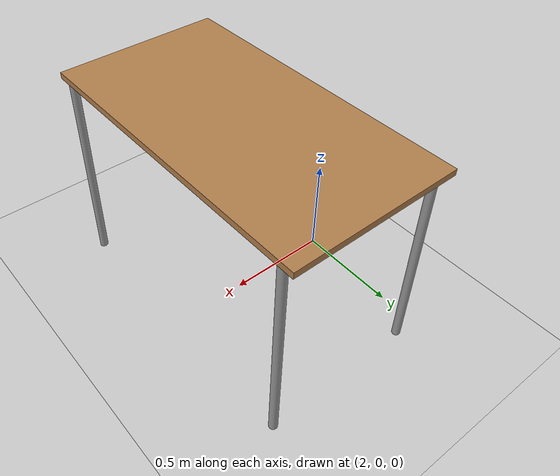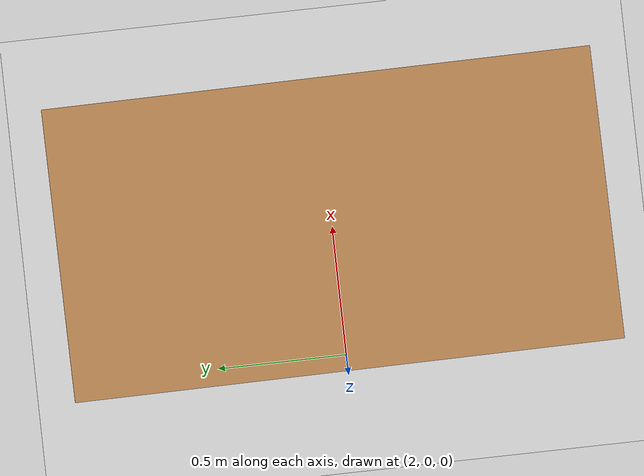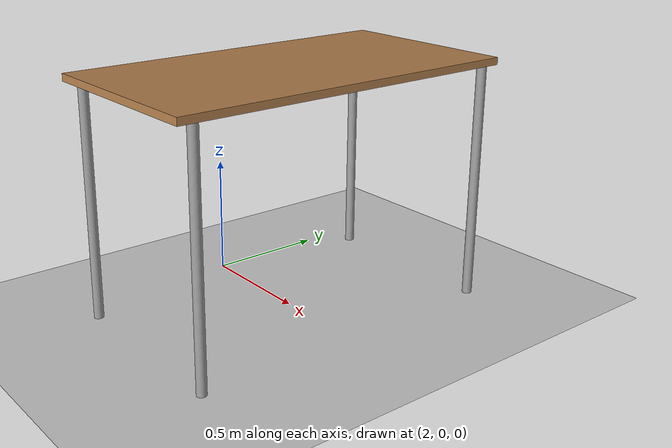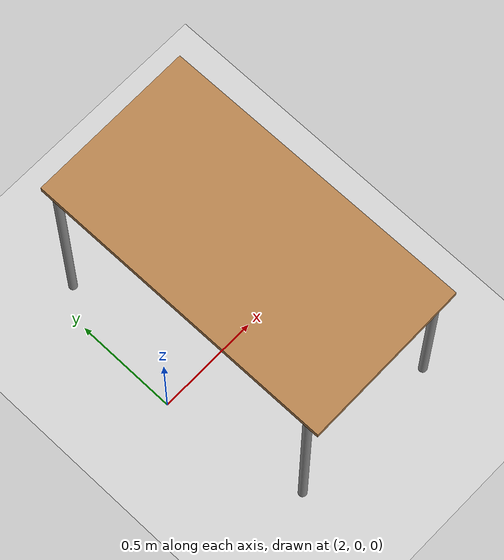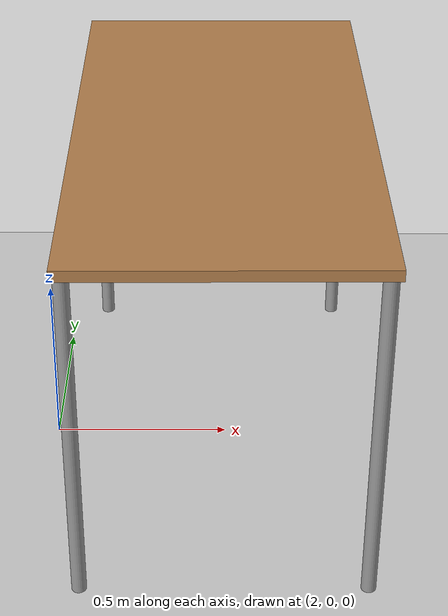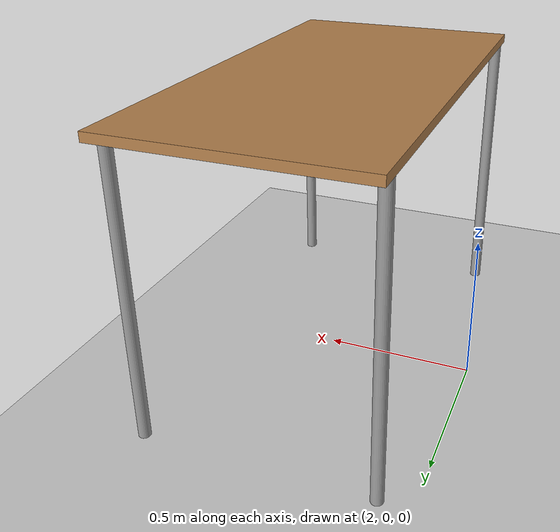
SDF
<sdf version="1.5">
 <world name="default">
  <plugin filename="libVRCPlugin.so" name="vrc_plugin">
   <atlas><model_name>atlas</model_name><pin_link>utorso</pin_link></atlas>
   <drc_vehicle><model_name>golf_cart</model_name><seat_link>chassis</seat_link></drc_vehicle>
   <drc_fire_hose>
    <fire_hose_model>fire_hose</fire_hose_model>
    <coupling_link>coupling</coupling_link>
    <standpipe_model>standpipe</standpipe_model>
    <spout_link>standpipe</spout_link>
    <thread_pitch>-1000</thread_pitch>
    <coupling_relative_pose>1.17038e-05 -0.125623 0.35 -0.0412152 -1.57078 1.61199</coupling_relative_pose>
   </drc_fire_hose>
  </plugin>
  <light name="sun" type="directional">
   <pose>0 0 10 0 -0 0</pose>
   <diffuse>0.8 0.8 0.8 1</diffuse>
   <specular>0.2 0.2 0.2 1</specular>
   <attenuation>
    <range>1000</range>
    <constant>0.9</constant>
    <linear>0.01</linear>
    <quadratic>0.001</quadratic>
   </attenuation>
   <direction>-0.5 0.1 -0.9</direction>
  </light>
  <model name="ground_plane">
   <static>1</static>
   <link name="link">
    <collision name="collision">
     <geometry><plane><normal>0 0 1</normal><size>100 100</size></plane></geometry>
     <surface><friction><ode><mu>100</mu><mu2>50</mu2></ode></friction></surface>
    </collision>
    <visual name="visual">
     <cast_shadows>0</cast_shadows>
     <geometry><plane><normal>0 0 1</normal><size>100 100</size></plane></geometry>
     <material>
      <script><uri>file://media/materials/scripts/gazebo.material</uri><name>Gazebo/Grey</name></script>
     </material>
    </visual>
   </link>
  </model>
  <physics name="default_physics" default="0" type="ode">
   <max_step_size>0.001</max_step_size>
   <real_time_factor>1</real_time_factor>
   <real_time_update_rate>1000</real_time_update_rate>
   <gravity>0 0 -9.8</gravity>
   <magnetic_field>5.5645e-06 2.28758e-05 -4.23884e-05</magnetic_field>
  </physics>
  <scene><ambient>0.4 0.4 0.4 1</ambient><background>0.7 0.7 0.7 1</background><shadows>1</shadows></scene>
  <spherical_coordinates>
   <surface_model>EARTH_WGS84</surface_model>
   <latitude_deg>0</latitude_deg>
   <longitude_deg>0</longitude_deg>
   <elevation>0</elevation>
   <heading_deg>0</heading_deg>
  </spherical_coordinates>
  <model name="table">
   <static>1</static>
   <link name="link">
    <collision name="surface">
     <pose>0 0 1 0 -0 0</pose>
     <geometry><box><size>1.5 0.8 0.03</size></box></geometry>
     <surface><friction><ode><mu>0.6</mu><mu2>0.6</mu2></ode></friction></surface>
    </collision>
    <visual name="visual1">
     <pose>0 0 1 0 -0 0</pose>
     <geometry><box><size>1.5 0.8 0.03</size></box></geometry>
     <material>
      <script><uri>file://media/materials/scripts/gazebo.material</uri><name>Gazebo/Wood</name></script>
     </material>
    </visual>
    <collision name="front_left_leg">
     <pose>0.68 0.38 0.5 0 -0 0</pose>
     <geometry><cylinder><radius>0.02</radius><length>1</length></cylinder></geometry>
    </collision>
    <visual name="front_left_leg">
     <pose>0.68 0.38 0.5 0 -0 0</pose>
     <geometry><cylinder><radius>0.02</radius><length>1</length></cylinder></geometry>
     <material>
      <script><uri>file://media/materials/scripts/gazebo.material</uri><name>Gazebo/Grey</name></script>
     </material>
    </visual>
    <collision name="front_right_leg">
     <pose>0.68 -0.38 0.5 0 -0 0</pose>
     <geometry><cylinder><radius>0.02</radius><length>1</length></cylinder></geometry>
    </collision>
    <visual name="front_right_leg">
     <pose>0.68 -0.38 0.5 0 -0 0</pose>
     <geometry><cylinder><radius>0.02</radius><length>1</length></cylinder></geometry>
     <material>
      <script><uri>file://media/materials/scripts/gazebo.material</uri><name>Gazebo/Grey</name></script>
     </material>
    </visual>
    <collision name="back_right_leg">
     <pose>-0.68 -0.38 0.5 0 -0 0</pose>
     <geometry><cylinder><radius>0.02</radius><length>1</length></cylinder></geometry>
    </collision>
    <visual name="back_right_leg">
     <pose>-0.68 -0.38 0.5 0 -0 0</pose>
     <geometry><cylinder><radius>0.02</radius><length>1</length></cylinder></geometry>
     <material>
      <script><uri>file://media/materials/scripts/gazebo.material</uri><name>Gazebo/Grey</name></script>
     </material>
    </visual>
    <collision name="back_left_leg">
     <pose>-0.68 0.38 0.5 0 -0 0</pose>
     <geometry><cylinder><radius>0.02</radius><length>1</length></cylinder></geometry>
    </collision>
    <visual name="back_left_leg">
     <pose>-0.68 0.38 0.5 0 -0 0</pose>
     <geometry><cylinder><radius>0.02</radius><length>1</length></cylinder></geometry>
     <material>
      <script><uri>file://media/materials/scripts/gazebo.material</uri><name>Gazebo/Grey</name></script>
     </material>
    </visual>
   </link>
   <pose>2.49023 0 0 0 0 -1.56277</pose>
  </model>
 </world>
</sdf>
